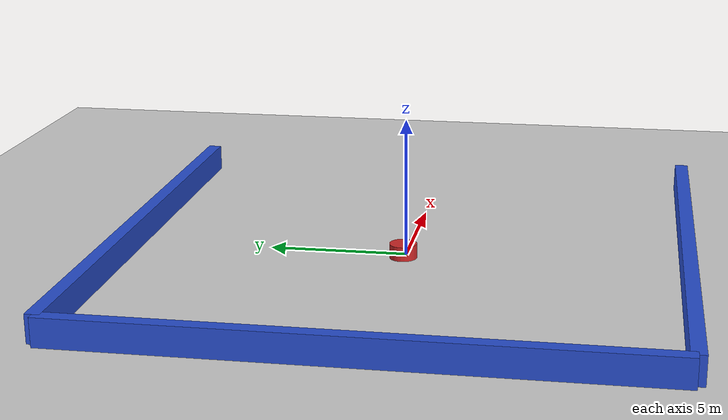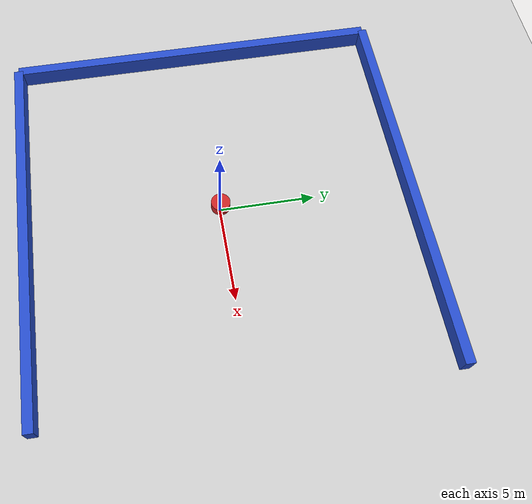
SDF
<?xml version="1.0" ?>
<sdf version="1.6">
   <world name="default">
    <model name="ground_plane">
      <static>1</static>
      <link name="link">
        <collision name="collision">
          <geometry><plane><normal>0 0 1</normal><size>100 100</size></plane></geometry>
          <surface><friction><ode><mu>100</mu><mu2>50</mu2></ode><torsional><ode/></torsional></friction><contact><ode/></contact></surface>
        </collision>
        <visual name="visual">
          <cast_shadows>0</cast_shadows>
          <geometry><plane><normal>0 0 1</normal><size>100 100</size></plane></geometry>
          <material><ambient>0.8 0.8 0.8 1</ambient><diffuse>0.8 0.8 0.8 1</diffuse><specular>0.01 0.01 0.01 1</specular></material>
        </visual>
      </link>
    </model>
    <light name="sun" type="directional">
      <cast_shadows>1</cast_shadows>
      <pose>0 0 10 0 0 0</pose>
      <diffuse>1 1 1 1</diffuse>
      <specular>0.1 0.1 0.1 1</specular>
      <attenuation><range>1000</range><constant>0.9</constant><linear>0.01</linear><quadratic>0.001</quadratic></attenuation>
      <direction>-0.5 0.5 -1</direction>
    </light>

    <model name='hardlibobs_191'>
      <static>1</static>
      <pose frame=''>-0.225000 0.075000 0.000000 0.000000 0.000000 0.000000</pose>
      <link name='link'>
        <inertial>
          <mass>1</mass>
          <inertia>
            <ixx>0.145833</ixx>
            <ixy>0</ixy>
            <ixz>0</ixz>
            <iyy>0.145833</iyy>
            <iyz>0</iyz>
            <izz>0.125</izz>
          </inertia>
        </inertial>
        <collision name='collision'>
           <geometry>
            <cylinder>
                <radius>0.5000</radius>
                 <length> 1 </length>
            </cylinder>
          </geometry>
           <surface>
            <contact>
              <ode/>
            </contact>
            <bounce/>
            <friction>
              <torsional>
                <ode/>
              </torsional>
              <ode/>
            </friction>
          </surface>
        </collision>
        <visual name='visual'>
           <geometry>
            <cylinder>
                <radius>0.5000</radius>
                 <length> 1 </length>
            </cylinder>
          </geometry>
          <material>
            <script>
              <name>Gazebo/Red</name>
              <uri>file://media/materials/scripts/gazebo.material</uri>
            </script>
          </material>
        </visual>
        <self_collide>0</self_collide>
        <kinematic>0</kinematic>
        <gravity>1</gravity>
      </link>
      <plugin name='hardlibobs_191' filename='hardlibobs_191.so'/>
    </model>

    <model name='hardlibobs_117'>
      <static>1</static>
      <pose frame=''>-0.225000 0.075000 0.000000 0.000000 0.000000 0.000000</pose>
      <link name='link'>
        <inertial>
          <mass>1</mass>
          <inertia>
            <ixx>0.145833</ixx>
            <ixy>0</ixy>
            <ixz>0</ixz>
            <iyy>0.145833</iyy>
            <iyz>0</iyz>
            <izz>0.125</izz>
          </inertia>
        </inertial>
        <collision name='collision'>
           <geometry>
            <cylinder>
                <radius>0.5000</radius>
                 <length> 1 </length>
            </cylinder>
          </geometry>
           <surface>
            <contact>
              <ode/>
            </contact>
            <bounce/>
            <friction>
              <torsional>
                <ode/>
              </torsional>
              <ode/>
            </friction>
          </surface>
        </collision>
        <visual name='visual'>
           <geometry>
            <cylinder>
                <radius>0.5000</radius>
                 <length> 1 </length>
            </cylinder>
          </geometry>
          <material>
            <script>
              <name>Gazebo/Red</name>
              <uri>file://media/materials/scripts/gazebo.material</uri>
            </script>
          </material>
        </visual>
        <self_collide>0</self_collide>
        <kinematic>0</kinematic>
        <gravity>1</gravity>
      </link>
      <plugin name='hardlibobs_117' filename='hardlibobs_117.so'/>
    </model>

    <model name='hardlibobs_196'>
      <static>1</static>
      <pose frame=''>-0.225000 0.075000 0.000000 0.000000 0.000000 0.000000</pose>
      <link name='link'>
        <inertial>
          <mass>1</mass>
          <inertia>
            <ixx>0.145833</ixx>
            <ixy>0</ixy>
            <ixz>0</ixz>
            <iyy>0.145833</iyy>
            <iyz>0</iyz>
            <izz>0.125</izz>
          </inertia>
        </inertial>
        <collision name='collision'>
           <geometry>
            <cylinder>
                <radius>0.5000</radius>
                 <length> 1 </length>
            </cylinder>
          </geometry>
           <surface>
            <contact>
              <ode/>
            </contact>
            <bounce/>
            <friction>
              <torsional>
                <ode/>
              </torsional>
              <ode/>
            </friction>
          </surface>
        </collision>
        <visual name='visual'>
           <geometry>
            <cylinder>
                <radius>0.5000</radius>
                 <length> 1 </length>
            </cylinder>
          </geometry>
          <material>
            <script>
              <name>Gazebo/Red</name>
              <uri>file://media/materials/scripts/gazebo.material</uri>
            </script>
          </material>
        </visual>
        <self_collide>0</self_collide>
        <kinematic>0</kinematic>
        <gravity>1</gravity>
      </link>
      <plugin name='hardlibobs_196' filename='hardlibobs_196.so'/>
    </model>

    <model name='hardlibobs_156'>
      <static>1</static>
      <pose frame=''>-0.225000 0.075000 0.000000 0.000000 0.000000 0.000000</pose>
      <link name='link'>
        <inertial>
          <mass>1</mass>
          <inertia>
            <ixx>0.145833</ixx>
            <ixy>0</ixy>
            <ixz>0</ixz>
            <iyy>0.145833</iyy>
            <iyz>0</iyz>
            <izz>0.125</izz>
          </inertia>
        </inertial>
        <collision name='collision'>
           <geometry>
            <cylinder>
                <radius>0.5000</radius>
                 <length> 1 </length>
            </cylinder>
          </geometry>
           <surface>
            <contact>
              <ode/>
            </contact>
            <bounce/>
            <friction>
              <torsional>
                <ode/>
              </torsional>
              <ode/>
            </friction>
          </surface>
        </collision>
        <visual name='visual'>
           <geometry>
            <cylinder>
                <radius>0.5000</radius>
                 <length> 1 </length>
            </cylinder>
          </geometry>
          <material>
            <script>
              <name>Gazebo/Red</name>
              <uri>file://media/materials/scripts/gazebo.material</uri>
            </script>
          </material>
        </visual>
        <self_collide>0</self_collide>
        <kinematic>0</kinematic>
        <gravity>1</gravity>
      </link>
      <plugin name='hardlibobs_156' filename='hardlibobs_156.so'/>
    </model>

    <model name='hardlibobs_104'>
      <static>1</static>
      <pose frame=''>-0.225000 0.075000 0.000000 0.000000 0.000000 0.000000</pose>
      <link name='link'>
        <inertial>
          <mass>1</mass>
          <inertia>
            <ixx>0.145833</ixx>
            <ixy>0</ixy>
            <ixz>0</ixz>
            <iyy>0.145833</iyy>
            <iyz>0</iyz>
            <izz>0.125</izz>
          </inertia>
        </inertial>
        <collision name='collision'>
           <geometry>
            <cylinder>
                <radius>0.5000</radius>
                 <length> 1 </length>
            </cylinder>
          </geometry>
           <surface>
            <contact>
              <ode/>
            </contact>
            <bounce/>
            <friction>
              <torsional>
                <ode/>
              </torsional>
              <ode/>
            </friction>
          </surface>
        </collision>
        <visual name='visual'>
           <geometry>
            <cylinder>
                <radius>0.5000</radius>
                 <length> 1 </length>
            </cylinder>
          </geometry>
          <material>
            <script>
              <name>Gazebo/Red</name>
              <uri>file://media/materials/scripts/gazebo.material</uri>
            </script>
          </material>
        </visual>
        <self_collide>0</self_collide>
        <kinematic>0</kinematic>
        <gravity>1</gravity>
      </link>
      <plugin name='hardlibobs_104' filename='hardlibobs_104.so'/>
    </model>

    <model name='hardlibobs_83'>
      <static>1</static>
      <pose frame=''>-0.225000 0.075000 0.000000 0.000000 0.000000 0.000000</pose>
      <link name='link'>
        <inertial>
          <mass>1</mass>
          <inertia>
            <ixx>0.145833</ixx>
            <ixy>0</ixy>
            <ixz>0</ixz>
            <iyy>0.145833</iyy>
            <iyz>0</iyz>
            <izz>0.125</izz>
          </inertia>
        </inertial>
        <collision name='collision'>
           <geometry>
            <cylinder>
                <radius>0.5000</radius>
                 <length> 1 </length>
            </cylinder>
          </geometry>
           <surface>
            <contact>
              <ode/>
            </contact>
            <bounce/>
            <friction>
              <torsional>
                <ode/>
              </torsional>
              <ode/>
            </friction>
          </surface>
        </collision>
        <visual name='visual'>
           <geometry>
            <cylinder>
                <radius>0.5000</radius>
                 <length> 1 </length>
            </cylinder>
          </geometry>
          <material>
            <script>
              <name>Gazebo/Red</name>
              <uri>file://media/materials/scripts/gazebo.material</uri>
            </script>
          </material>
        </visual>
        <self_collide>0</self_collide>
        <kinematic>0</kinematic>
        <gravity>1</gravity>
      </link>
      <plugin name='hardlibobs_83' filename='hardlibobs_83.so'/>
    </model>

    <model name='hardlibobs_8'>
      <static>1</static>
      <pose frame=''>-0.225000 0.075000 0.000000 0.000000 0.000000 0.000000</pose>
      <link name='link'>
        <inertial>
          <mass>1</mass>
          <inertia>
            <ixx>0.145833</ixx>
            <ixy>0</ixy>
            <ixz>0</ixz>
            <iyy>0.145833</iyy>
            <iyz>0</iyz>
            <izz>0.125</izz>
          </inertia>
        </inertial>
        <collision name='collision'>
           <geometry>
            <cylinder>
                <radius>0.5000</radius>
                 <length> 1 </length>
            </cylinder>
          </geometry>
           <surface>
            <contact>
              <ode/>
            </contact>
            <bounce/>
            <friction>
              <torsional>
                <ode/>
              </torsional>
              <ode/>
            </friction>
          </surface>
        </collision>
        <visual name='visual'>
           <geometry>
            <cylinder>
                <radius>0.5000</radius>
                 <length> 1 </length>
            </cylinder>
          </geometry>
          <material>
            <script>
              <name>Gazebo/Red</name>
              <uri>file://media/materials/scripts/gazebo.material</uri>
            </script>
          </material>
        </visual>
        <self_collide>0</self_collide>
        <kinematic>0</kinematic>
        <gravity>1</gravity>
      </link>
      <plugin name='hardlibobs_8' filename='hardlibobs_8.so'/>
    </model>

    <model name='hardlibobs_11'>
      <static>1</static>
      <pose frame=''>-0.225000 0.075000 0.000000 0.000000 0.000000 0.000000</pose>
      <link name='link'>
        <inertial>
          <mass>1</mass>
          <inertia>
            <ixx>0.145833</ixx>
            <ixy>0</ixy>
            <ixz>0</ixz>
            <iyy>0.145833</iyy>
            <iyz>0</iyz>
            <izz>0.125</izz>
          </inertia>
        </inertial>
        <collision name='collision'>
           <geometry>
            <cylinder>
                <radius>0.5000</radius>
                 <length> 1 </length>
            </cylinder>
          </geometry>
           <surface>
            <contact>
              <ode/>
            </contact>
            <bounce/>
            <friction>
              <torsional>
                <ode/>
              </torsional>
              <ode/>
            </friction>
          </surface>
        </collision>
        <visual name='visual'>
           <geometry>
            <cylinder>
                <radius>0.5000</radius>
                 <length> 1 </length>
            </cylinder>
          </geometry>
          <material>
            <script>
              <name>Gazebo/Red</name>
              <uri>file://media/materials/scripts/gazebo.material</uri>
            </script>
          </material>
        </visual>
        <self_collide>0</self_collide>
        <kinematic>0</kinematic>
        <gravity>1</gravity>
      </link>
      <plugin name='hardlibobs_11' filename='hardlibobs_11.so'/>
    </model>

    <model name='hardlibobs_84'>
      <static>1</static>
      <pose frame=''>-0.225000 0.075000 0.000000 0.000000 0.000000 0.000000</pose>
      <link name='link'>
        <inertial>
          <mass>1</mass>
          <inertia>
            <ixx>0.145833</ixx>
            <ixy>0</ixy>
            <ixz>0</ixz>
            <iyy>0.145833</iyy>
            <iyz>0</iyz>
            <izz>0.125</izz>
          </inertia>
        </inertial>
        <collision name='collision'>
           <geometry>
            <cylinder>
                <radius>0.5000</radius>
                 <length> 1 </length>
            </cylinder>
          </geometry>
           <surface>
            <contact>
              <ode/>
            </contact>
            <bounce/>
            <friction>
              <torsional>
                <ode/>
              </torsional>
              <ode/>
            </friction>
          </surface>
        </collision>
        <visual name='visual'>
           <geometry>
            <cylinder>
                <radius>0.5000</radius>
                 <length> 1 </length>
            </cylinder>
          </geometry>
          <material>
            <script>
              <name>Gazebo/Red</name>
              <uri>file://media/materials/scripts/gazebo.material</uri>
            </script>
          </material>
        </visual>
        <self_collide>0</self_collide>
        <kinematic>0</kinematic>
        <gravity>1</gravity>
      </link>
      <plugin name='hardlibobs_84' filename='hardlibobs_84.so'/>
    </model>

    <model name='hardlibobs_173'>
      <static>1</static>
      <pose frame=''>-0.225000 0.075000 0.000000 0.000000 0.000000 0.000000</pose>
      <link name='link'>
        <inertial>
          <mass>1</mass>
          <inertia>
            <ixx>0.145833</ixx>
            <ixy>0</ixy>
            <ixz>0</ixz>
            <iyy>0.145833</iyy>
            <iyz>0</iyz>
            <izz>0.125</izz>
          </inertia>
        </inertial>
        <collision name='collision'>
           <geometry>
            <cylinder>
                <radius>0.5000</radius>
                 <length> 1 </length>
            </cylinder>
          </geometry>
           <surface>
            <contact>
              <ode/>
            </contact>
            <bounce/>
            <friction>
              <torsional>
                <ode/>
              </torsional>
              <ode/>
            </friction>
          </surface>
        </collision>
        <visual name='visual'>
           <geometry>
            <cylinder>
                <radius>0.5000</radius>
                 <length> 1 </length>
            </cylinder>
          </geometry>
          <material>
            <script>
              <name>Gazebo/Red</name>
              <uri>file://media/materials/scripts/gazebo.material</uri>
            </script>
          </material>
        </visual>
        <self_collide>0</self_collide>
        <kinematic>0</kinematic>
        <gravity>1</gravity>
      </link>
      <plugin name='hardlibobs_173' filename='hardlibobs_173.so'/>
    </model>

    <model name='hardlibobs_133'>
      <static>1</static>
      <pose frame=''>-0.225000 0.075000 0.000000 0.000000 0.000000 0.000000</pose>
      <link name='link'>
        <inertial>
          <mass>1</mass>
          <inertia>
            <ixx>0.145833</ixx>
            <ixy>0</ixy>
            <ixz>0</ixz>
            <iyy>0.145833</iyy>
            <iyz>0</iyz>
            <izz>0.125</izz>
          </inertia>
        </inertial>
        <collision name='collision'>
           <geometry>
            <cylinder>
                <radius>0.5000</radius>
                 <length> 1 </length>
            </cylinder>
          </geometry>
           <surface>
            <contact>
              <ode/>
            </contact>
            <bounce/>
            <friction>
              <torsional>
                <ode/>
              </torsional>
              <ode/>
            </friction>
          </surface>
        </collision>
        <visual name='visual'>
           <geometry>
            <cylinder>
                <radius>0.5000</radius>
                 <length> 1 </length>
            </cylinder>
          </geometry>
          <material>
            <script>
              <name>Gazebo/Red</name>
              <uri>file://media/materials/scripts/gazebo.material</uri>
            </script>
          </material>
        </visual>
        <self_collide>0</self_collide>
        <kinematic>0</kinematic>
        <gravity>1</gravity>
      </link>
      <plugin name='hardlibobs_133' filename='hardlibobs_133.so'/>
    </model>

    <model name='hardlibobs_34'>
      <static>1</static>
      <pose frame=''>-0.225000 0.075000 0.000000 0.000000 0.000000 0.000000</pose>
      <link name='link'>
        <inertial>
          <mass>1</mass>
          <inertia>
            <ixx>0.145833</ixx>
            <ixy>0</ixy>
            <ixz>0</ixz>
            <iyy>0.145833</iyy>
            <iyz>0</iyz>
            <izz>0.125</izz>
          </inertia>
        </inertial>
        <collision name='collision'>
           <geometry>
            <cylinder>
                <radius>0.5000</radius>
                 <length> 1 </length>
            </cylinder>
          </geometry>
           <surface>
            <contact>
              <ode/>
            </contact>
            <bounce/>
            <friction>
              <torsional>
                <ode/>
              </torsional>
              <ode/>
            </friction>
          </surface>
        </collision>
        <visual name='visual'>
           <geometry>
            <cylinder>
                <radius>0.5000</radius>
                 <length> 1 </length>
            </cylinder>
          </geometry>
          <material>
            <script>
              <name>Gazebo/Red</name>
              <uri>file://media/materials/scripts/gazebo.material</uri>
            </script>
          </material>
        </visual>
        <self_collide>0</self_collide>
        <kinematic>0</kinematic>
        <gravity>1</gravity>
      </link>
      <plugin name='hardlibobs_34' filename='hardlibobs_34.so'/>
    </model>

    <model name='hardlibobs_148'>
      <static>1</static>
      <pose frame=''>-0.225000 0.075000 0.000000 0.000000 0.000000 0.000000</pose>
      <link name='link'>
        <inertial>
          <mass>1</mass>
          <inertia>
            <ixx>0.145833</ixx>
            <ixy>0</ixy>
            <ixz>0</ixz>
            <iyy>0.145833</iyy>
            <iyz>0</iyz>
            <izz>0.125</izz>
          </inertia>
        </inertial>
        <collision name='collision'>
           <geometry>
            <cylinder>
                <radius>0.5000</radius>
                 <length> 1 </length>
            </cylinder>
          </geometry>
           <surface>
            <contact>
              <ode/>
            </contact>
            <bounce/>
            <friction>
              <torsional>
                <ode/>
              </torsional>
              <ode/>
            </friction>
          </surface>
        </collision>
        <visual name='visual'>
           <geometry>
            <cylinder>
                <radius>0.5000</radius>
                 <length> 1 </length>
            </cylinder>
          </geometry>
          <material>
            <script>
              <name>Gazebo/Red</name>
              <uri>file://media/materials/scripts/gazebo.material</uri>
            </script>
          </material>
        </visual>
        <self_collide>0</self_collide>
        <kinematic>0</kinematic>
        <gravity>1</gravity>
      </link>
      <plugin name='hardlibobs_148' filename='hardlibobs_148.so'/>
    </model>

    <model name='hardlibobs_53'>
      <static>1</static>
      <pose frame=''>-0.225000 0.075000 0.000000 0.000000 0.000000 0.000000</pose>
      <link name='link'>
        <inertial>
          <mass>1</mass>
          <inertia>
            <ixx>0.145833</ixx>
            <ixy>0</ixy>
            <ixz>0</ixz>
            <iyy>0.145833</iyy>
            <iyz>0</iyz>
            <izz>0.125</izz>
          </inertia>
        </inertial>
        <collision name='collision'>
           <geometry>
            <cylinder>
                <radius>0.5000</radius>
                 <length> 1 </length>
            </cylinder>
          </geometry>
           <surface>
            <contact>
              <ode/>
            </contact>
            <bounce/>
            <friction>
              <torsional>
                <ode/>
              </torsional>
              <ode/>
            </friction>
          </surface>
        </collision>
        <visual name='visual'>
           <geometry>
            <cylinder>
                <radius>0.5000</radius>
                 <length> 1 </length>
            </cylinder>
          </geometry>
          <material>
            <script>
              <name>Gazebo/Red</name>
              <uri>file://media/materials/scripts/gazebo.material</uri>
            </script>
          </material>
        </visual>
        <self_collide>0</self_collide>
        <kinematic>0</kinematic>
        <gravity>1</gravity>
      </link>
      <plugin name='hardlibobs_53' filename='hardlibobs_53.so'/>
    </model>

    <model name='hardlibobs_135'>
      <static>1</static>
      <pose frame=''>-0.225000 0.075000 0.000000 0.000000 0.000000 0.000000</pose>
      <link name='link'>
        <inertial>
          <mass>1</mass>
          <inertia>
            <ixx>0.145833</ixx>
            <ixy>0</ixy>
            <ixz>0</ixz>
            <iyy>0.145833</iyy>
            <iyz>0</iyz>
            <izz>0.125</izz>
          </inertia>
        </inertial>
        <collision name='collision'>
           <geometry>
            <cylinder>
                <radius>0.5000</radius>
                 <length> 1 </length>
            </cylinder>
          </geometry>
           <surface>
            <contact>
              <ode/>
            </contact>
            <bounce/>
            <friction>
              <torsional>
                <ode/>
              </torsional>
              <ode/>
            </friction>
          </surface>
        </collision>
        <visual name='visual'>
           <geometry>
            <cylinder>
                <radius>0.5000</radius>
                 <length> 1 </length>
            </cylinder>
          </geometry>
          <material>
            <script>
              <name>Gazebo/Red</name>
              <uri>file://media/materials/scripts/gazebo.material</uri>
            </script>
          </material>
        </visual>
        <self_collide>0</self_collide>
        <kinematic>0</kinematic>
        <gravity>1</gravity>
      </link>
      <plugin name='hardlibobs_135' filename='hardlibobs_135.so'/>
    </model>

    <model name='hardlibobs_99'>
      <static>1</static>
      <pose frame=''>-0.225000 0.075000 0.000000 0.000000 0.000000 0.000000</pose>
      <link name='link'>
        <inertial>
          <mass>1</mass>
          <inertia>
            <ixx>0.145833</ixx>
            <ixy>0</ixy>
            <ixz>0</ixz>
            <iyy>0.145833</iyy>
            <iyz>0</iyz>
            <izz>0.125</izz>
          </inertia>
        </inertial>
        <collision name='collision'>
           <geometry>
            <cylinder>
                <radius>0.5000</radius>
                 <length> 1 </length>
            </cylinder>
          </geometry>
           <surface>
            <contact>
              <ode/>
            </contact>
            <bounce/>
            <friction>
              <torsional>
                <ode/>
              </torsional>
              <ode/>
            </friction>
          </surface>
        </collision>
        <visual name='visual'>
           <geometry>
            <cylinder>
                <radius>0.5000</radius>
                 <length> 1 </length>
            </cylinder>
          </geometry>
          <material>
            <script>
              <name>Gazebo/Red</name>
              <uri>file://media/materials/scripts/gazebo.material</uri>
            </script>
          </material>
        </visual>
        <self_collide>0</self_collide>
        <kinematic>0</kinematic>
        <gravity>1</gravity>
      </link>
      <plugin name='hardlibobs_99' filename='hardlibobs_99.so'/>
    </model>

    <model name='hardlibobs_138'>
      <static>1</static>
      <pose frame=''>-0.225000 0.075000 0.000000 0.000000 0.000000 0.000000</pose>
      <link name='link'>
        <inertial>
          <mass>1</mass>
          <inertia>
            <ixx>0.145833</ixx>
            <ixy>0</ixy>
            <ixz>0</ixz>
            <iyy>0.145833</iyy>
            <iyz>0</iyz>
            <izz>0.125</izz>
          </inertia>
        </inertial>
        <collision name='collision'>
           <geometry>
            <cylinder>
                <radius>0.5000</radius>
                 <length> 1 </length>
            </cylinder>
          </geometry>
           <surface>
            <contact>
              <ode/>
            </contact>
            <bounce/>
            <friction>
              <torsional>
                <ode/>
              </torsional>
              <ode/>
            </friction>
          </surface>
        </collision>
        <visual name='visual'>
           <geometry>
            <cylinder>
                <radius>0.5000</radius>
                 <length> 1 </length>
            </cylinder>
          </geometry>
          <material>
            <script>
              <name>Gazebo/Red</name>
              <uri>file://media/materials/scripts/gazebo.material</uri>
            </script>
          </material>
        </visual>
        <self_collide>0</self_collide>
        <kinematic>0</kinematic>
        <gravity>1</gravity>
      </link>
      <plugin name='hardlibobs_138' filename='hardlibobs_138.so'/>
    </model>

    <model name='hardlibobs_125'>
      <static>1</static>
      <pose frame=''>-0.225000 0.075000 0.000000 0.000000 0.000000 0.000000</pose>
      <link name='link'>
        <inertial>
          <mass>1</mass>
          <inertia>
            <ixx>0.145833</ixx>
            <ixy>0</ixy>
            <ixz>0</ixz>
            <iyy>0.145833</iyy>
            <iyz>0</iyz>
            <izz>0.125</izz>
          </inertia>
        </inertial>
        <collision name='collision'>
           <geometry>
            <cylinder>
                <radius>0.5000</radius>
                 <length> 1 </length>
            </cylinder>
          </geometry>
           <surface>
            <contact>
              <ode/>
            </contact>
            <bounce/>
            <friction>
              <torsional>
                <ode/>
              </torsional>
              <ode/>
            </friction>
          </surface>
        </collision>
        <visual name='visual'>
           <geometry>
            <cylinder>
                <radius>0.5000</radius>
                 <length> 1 </length>
            </cylinder>
          </geometry>
          <material>
            <script>
              <name>Gazebo/Red</name>
              <uri>file://media/materials/scripts/gazebo.material</uri>
            </script>
          </material>
        </visual>
        <self_collide>0</self_collide>
        <kinematic>0</kinematic>
        <gravity>1</gravity>
      </link>
      <plugin name='hardlibobs_125' filename='hardlibobs_125.so'/>
    </model>

    <model name='hardlibobs_102'>
      <static>1</static>
      <pose frame=''>-0.225000 0.075000 0.000000 0.000000 0.000000 0.000000</pose>
      <link name='link'>
        <inertial>
          <mass>1</mass>
          <inertia>
            <ixx>0.145833</ixx>
            <ixy>0</ixy>
            <ixz>0</ixz>
            <iyy>0.145833</iyy>
            <iyz>0</iyz>
            <izz>0.125</izz>
          </inertia>
        </inertial>
        <collision name='collision'>
           <geometry>
            <cylinder>
                <radius>0.5000</radius>
                 <length> 1 </length>
            </cylinder>
          </geometry>
           <surface>
            <contact>
              <ode/>
            </contact>
            <bounce/>
            <friction>
              <torsional>
                <ode/>
              </torsional>
              <ode/>
            </friction>
          </surface>
        </collision>
        <visual name='visual'>
           <geometry>
            <cylinder>
                <radius>0.5000</radius>
                 <length> 1 </length>
            </cylinder>
          </geometry>
          <material>
            <script>
              <name>Gazebo/Red</name>
              <uri>file://media/materials/scripts/gazebo.material</uri>
            </script>
          </material>
        </visual>
        <self_collide>0</self_collide>
        <kinematic>0</kinematic>
        <gravity>1</gravity>
      </link>
      <plugin name='hardlibobs_102' filename='hardlibobs_102.so'/>
    </model>

      <model name="back_wall">
      <static>1</static>\   <pose>-10 0 .5 0 0 0</pose>        <link name="box_link">

	<collision name='collision'>
            <geometry>
              <box>
                <size>.5 20 1</size>
              </box>
            </geometry>
           <surface>
            <contact>
              <ode/>
            </contact>
            <bounce/>
            <friction>
              <torsional>
                <ode/>
              </torsional>
              <ode/>
            </friction>
          </surface>
        </collision>

          <visual name="visual">
            <geometry>
              <box>
                <size>.5 20 1</size>
              </box>
            </geometry>
          <material>
                 <script>
                     <name>Gazebo/Blue</name>
                         <uri>file://media/materials/scripts/gazebo.material</uri>
                         </script>
                     </material>
          </visual>
        </link>
      </model>
      <model name="top_wall">
      <static>1</static>
       <pose>0 10 .5 0 0 0</pose>        <link name="box_link">

	<collision name='collision'>
           <geometry>
              <box>
                <size>20 .5 1</size>
              </box>
            </geometry>
           <surface>
            <contact>
              <ode/>
            </contact>
            <bounce/>
            <friction>
              <torsional>
                <ode/>
              </torsional>
              <ode/>
            </friction>
          </surface>
        </collision>
          <visual name="visual">
            <geometry>
              <box>
                <size>20 .5 1</size>
              </box>
            </geometry>
          <material>
                 <script>
                     <name>Gazebo/Blue</name>
                         <uri>file://media/materials/scripts/gazebo.material</uri>
                         </script>
                     </material>
          </visual>
        </link>
      </model>
      <model name="bottom_wall">
      <static>1</static>
       <pose>0 -10 .5 0 0 0</pose>        <link name="box_link">
	<collision name='collision'>
            <geometry>
              <box>
                <size>20 .5 1</size>
              </box>
            </geometry>
           <surface>
            <contact>
              <ode/>
            </contact>
            <bounce/>
            <friction>
              <torsional>
                <ode/>
              </torsional>
              <ode/>
            </friction>
          </surface>
        </collision>
          <visual name="visual">
            <geometry>
              <box>
                <size>20 .5 1</size>
              </box>
            </geometry>
          <material>
                 <script>
                     <name>Gazebo/Blue</name>
                         <uri>file://media/materials/scripts/gazebo.material</uri>
                         </script>
                     </material>
          </visual>
        </link>
      </model>
   </world>
</sdf>
